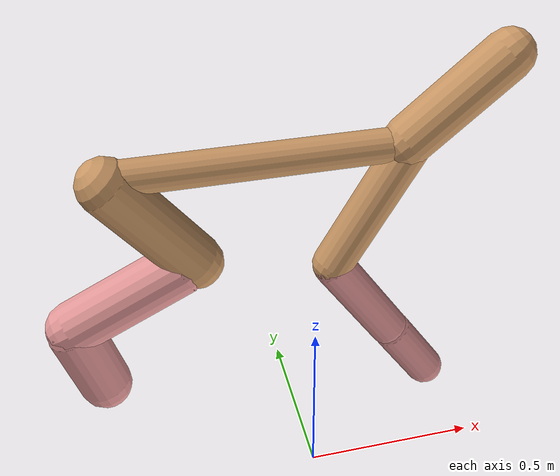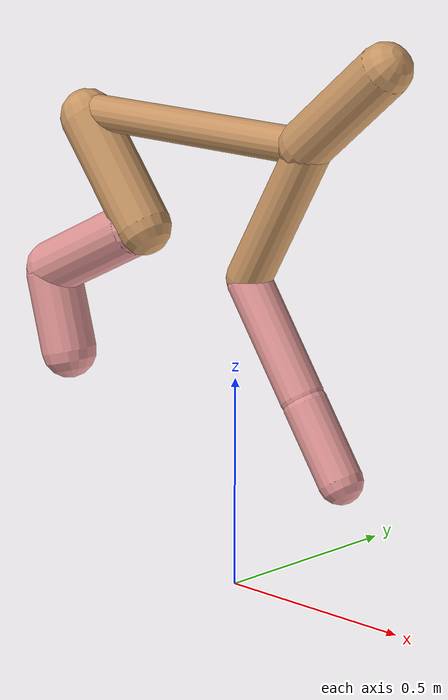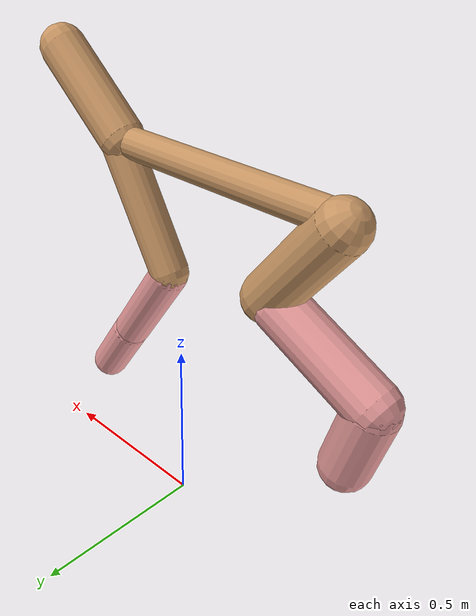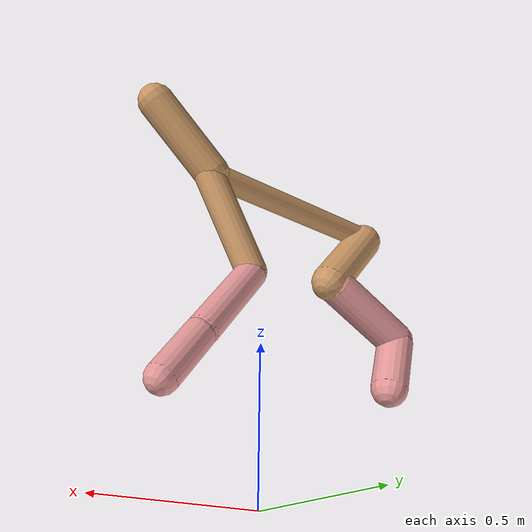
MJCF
<mujoco model="cheetah">
  <compiler angle="radian" coordinate="local" inertiafromgeom="true" settotalmass="14" />
  <default>
    <joint armature=".1" damping=".01" limited="true" solimplimit="0 .8 .03" solreflimit=".02 1" stiffness="8" />
    <geom conaffinity="0" condim="3" contype="1" friction="0.8 .1 .1" rgba="0.8 0.6 .4 1" solimp="0.0 0.8 0.01" solref="0.02 1" />
    <motor ctrllimited="true" ctrlrange="-1 1" />
  </default>
  <size nstack="300000" nuser_geom="1" />
  <option gravity="0 0 -9.81" timestep="0.01" />
  <worldbody>
    <body name="torso" pos="0.0 0.0 1.0678829919835082">
      <joint armature="0" axis="1 0 0" damping="0" limited="false" name="ignorex" pos="0 0 0" stiffness="0" type="slide" />
      <joint armature="0" axis="0 0 1" damping="0" limited="false" name="ignorez" pos="0 0 0" stiffness="0" type="slide" />
      <joint armature="0" axis="0 1 0" damping="0" limited="false" name="ignorey" pos="0 0 0" stiffness="0" type="hinge" />
      <geom fromto="-0.5 0.0 0.0 0.22870550472913131 0.0 0.0" name="torso" size="0.041881096007704406" type="capsule" />
      <geom axisangle="0 1 0 .87" name="head" pos="0.3287055047291313 0.0 0.1" size="0.06173958684226102 0.15" type="capsule" />

      <body name="bthigh" pos="-.5 0 0">
        <joint axis="0 1 0" damping="6" name="bthigh" pos="0 0 0" range="-.52 1.05" stiffness="240" type="hinge" />
        <geom axisangle="0 1 0 -3.8" name="bthigh" pos="0.10416113943153171 0.0 -0.13540948126099123" size="0.06765915785957564 0.15182477610487427" type="capsule" />
        <body name="bshin" pos="0.16832227886306342 0.0 -0.26081896252198244">
          <joint axis="0 1 0" damping="4.5" name="bshin" pos="0 0 0" range="-.785 .785" stiffness="180" type="hinge" />
          <geom axisangle="0 1 0 -2.03" name="bshin" pos="-0.14631475722829596 0.0 -0.07315737861414798" rgba="0.9 0.6 0.6 1" size="0.06765915785957564 0.1570601132119389" type="capsule" />
          <body name="bfoot" pos="-0.2926295144565919 0.0 -0.14631475722829596">
            <joint axis="0 1 0" damping="3" name="bfoot" pos="0 0 0" range="-.4 .785" stiffness="120" type="hinge" />
            <geom axisangle="0 1 0 -.27" name="bfoot" pos="0.031307257808572145 0.0 -0.10122680024771662" rgba="0.9 0.6 0.6 1" size="0.06765915785957564 0.09842433761281505" type="capsule" />
            <inertial mass="10" />
          </body>
        </body>
      </body>
      <body name="fthigh" pos="0.22870550472913131 0.0 0.0">
        <joint axis="0 1 0" damping="4.5" name="fthigh" pos="0 0 0" range="-1.5 0.8" stiffness="180" type="hinge" />
        <geom axisangle="0 1 0 .52" name="fthigh" pos="-0.09578830773953843 0.0 -0.16420852755349444" size="0.05242812635949258 0.1841803744077475" type="capsule" />
        <body name="fshin" pos="-0.19157661547907687 0.0 -0.3284170551069889">
          <joint axis="0 1 0" damping="3" name="fshin" pos="0 0 0" range="-1.2 1.1" stiffness="120" type="hinge" />
          <geom axisangle="0 1 0 -.6" name="fshin" pos="0.08888237842363228 0.0 -0.12306790858656777" rgba="0.9 0.6 0.6 1" size="0.05242812635949258 0.14679037358812957" type="capsule" />
          <body name="ffoot" pos="0.17776475684726456 0.0 -0.24613581717313554">
            <joint axis="0 1 0" damping="1.5" name="ffoot" pos="0 0 0" range="-3.1 -0.3" stiffness="60" type="hinge" />
            <geom axisangle="0 1 0 -.6" name="ffoot" pos="0.05956640841434556 0.0 -0.09265885753342644" rgba="0.9 0.6 0.6 1" size="0.05242812635949258 0.09693703916197238" type="capsule" />
            <inertial mass="10" />
          </body>
        </body>
      </body>
    </body>
  </worldbody>
  <actuator>
    <motor gear="120" joint="bthigh" name="bthigh" />
    <motor gear="90" joint="bshin" name="bshin" />
    <motor gear="60" joint="bfoot" name="bfoot" />
    <motor gear="120" joint="fthigh" name="fthigh" />
    <motor gear="60" joint="fshin" name="fshin" />
    <motor gear="30" joint="ffoot" name="ffoot" />
  </actuator>
</mujoco>
